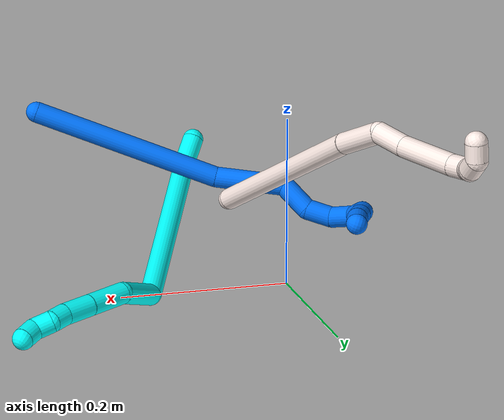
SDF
<sdf version="1.7">
 <world name="default">
  <model name="photoneo_s_sensor">
   <static>1</static>
   <pose>0 0 2 1.57079 1.57079 3.14159</pose>
   <link name="link">
    <inertial><mass>0.1</mass></inertial>
    <sensor name="sensor" type="depth">
     <update_rate>30</update_rate>
     <camera>
      <horizontal_fov>1.22</horizontal_fov>
      <image><width>1920</width><height>1200</height><format>B8G8R8</format></image>
      <clip><near>0.1</near><far>4</far></clip>
      <depth_camera><output>points</output></depth_camera>
     </camera>
     <plugin name="camera_plugin" filename="libgazebo_ros_depth_camera.so">
      <baseline>0.2</baseline>
      <alwaysOn>1</alwaysOn>
      <updateRate>0.0</updateRate>
      <cameraName>camera_ir</cameraName>
      <imageTopicName>/camera/color/image_raw</imageTopicName>
      <cameraInfoTopicName>/camera/color/camera_info</cameraInfoTopicName>
      <depthImageTopicName>/camera/depth/image_raw</depthImageTopicName>
      <depthImageCameraInfoTopicName>/camera/depth/camera_info</depthImageCameraInfoTopicName>
      <pointCloudTopicName>/camera/depth/points</pointCloudTopicName>
      <frameName>fr_optical</frameName>
      <pointCloudCutoff>0.1</pointCloudCutoff>
      <pointCloudCutoffMax>2.0</pointCloudCutoffMax>
      <distortionK1>0</distortionK1>
      <distortionK2>0</distortionK2>
      <distortionK3>0</distortionK3>
      <distortionT1>0</distortionT1>
      <distortionT2>0</distortionT2>
      <CxPrime>0</CxPrime>
      <Cx>0</Cx>
      <Cy>0</Cy>
      <focalLength>0</focalLength>
      <hackBaseline>0</hackBaseline>
     </plugin>
    </sensor>
   </link>
  </model>
  <model name="bin">
   <static>1</static>
   <link name="bottom">
    <collision name="collision-bottom">
     <pose>0 0 -0.01 0 -0 0</pose>
     <geometry><box><size>0.8 0.6 0.02</size></box></geometry>
     <surface>
      <friction><ode><mu>100</mu><mu2>100</mu2></ode></friction>
      <contact><collide_bitmask>65535</collide_bitmask></contact>
     </surface>
    </collision>
   </link>
   <link name="west_wall">
    <collision name="collision-west_wall">
     <pose>-0.41 0 0.1 0 -0 0</pose>
     <geometry><box><size>0.02 0.6 0.2</size></box></geometry>
     <surface>
      <friction><ode><mu>100</mu><mu2>100</mu2></ode></friction>
      <contact><collide_bitmask>65535</collide_bitmask></contact>
     </surface>
    </collision>
   </link>
   <link name="east_wall">
    <collision name="collision-east_wall">
     <pose>0.41 0 0.1 0 -0 0</pose>
     <geometry><box><size>0.02 0.6 0.2</size></box></geometry>
     <surface>
      <friction><ode><mu>100</mu><mu2>100</mu2></ode></friction>
      <contact><collide_bitmask>65535</collide_bitmask></contact>
     </surface>
    </collision>
   </link>
   <link name="south_wall">
    <collision name="collision-south_wall">
     <pose>0 -0.31 0.1 0 -0 0</pose>
     <geometry><box><size>0.8 0.02 0.2</size></box></geometry>
     <surface>
      <friction><ode><mu>100</mu><mu2>100</mu2></ode></friction>
      <contact><collide_bitmask>65535</collide_bitmask></contact>
     </surface>
    </collision>
   </link>
   <link name="north_wall">
    <collision name="collision-north_wall">
     <pose>0 0.31 0.1 0 -0 0</pose>
     <geometry><box><size>0.8 0.02 0.2</size></box></geometry>
     <surface>
      <friction><ode><mu>100</mu><mu2>100</mu2></ode></friction>
      <contact><collide_bitmask>65535</collide_bitmask></contact>
     </surface>
    </collision>
   </link>
  </model>
  <model name="3">
   <static>0</static>
   <link name="3">
    <collision name="collision-cylinder-e_1_1_4">
     <pose>0.0033 -0.000429 0.01838 0.023314 0.177594 0.002076</pose>
     <geometry><cylinder><radius>0.0125</radius><length>0.037357</length></cylinder></geometry>
     <surface>
      <friction><ode><mu>1.16</mu><mu2>1.16</mu2><slip1>0</slip1><slip2>0</slip2></ode></friction>
      <contact><ode><kp>1e+06</kp><kd>1</kd><max_vel>0</max_vel><min_depth>0.001</min_depth></ode></contact>
     </surface>
    </collision>
    <visual name="visual-cylinder-e_1_1_4">
     <pose>0.0033 -0.000429 0.01838 0.023314 0.177594 0.002076</pose>
     <geometry><cylinder><radius>0.0125</radius><length>0.037357</length></cylinder></geometry>
     <material><ambient>0.003922 1 0.996078 1</ambient></material>
    </visual>
    <collision name="collision-cylinder-e_2_4_5">
     <pose>0.053034 0.037215 0.143227 -0.343429 0.389668 -0.068419</pose>
     <geometry><cylinder><radius>0.0125</radius><length>0.244466</length></cylinder></geometry>
     <surface>
      <friction><ode><mu>1.16</mu><mu2>1.16</mu2><slip1>0</slip1><slip2>0</slip2></ode></friction>
      <contact><ode><kp>1e+06</kp><kd>1</kd><max_vel>0</max_vel><min_depth>0.001</min_depth></ode></contact>
     </surface>
    </collision>
    <visual name="visual-cylinder-e_2_4_5">
     <pose>0.053034 0.037215 0.143227 -0.343429 0.389668 -0.068419</pose>
     <geometry><cylinder><radius>0.0125</radius><length>0.244466</length></cylinder></geometry>
     <material><ambient>0.003922 1 0.996078 1</ambient></material>
    </visual>
    <collision name="collision-cylinder-e_3_5_6">
     <pose>0.100447 0.10574 0.267527 -1.04102 0.027748 -0.015907</pose>
     <geometry><cylinder><radius>0.0125</radius><length>0.070606</length></cylinder></geometry>
     <surface>
      <friction><ode><mu>1.16</mu><mu2>1.16</mu2><slip1>0</slip1><slip2>0</slip2></ode></friction>
      <contact><ode><kp>1e+06</kp><kd>1</kd><max_vel>0</max_vel><min_depth>0.001</min_depth></ode></contact>
     </surface>
    </collision>
    <visual name="visual-cylinder-e_3_5_6">
     <pose>0.100447 0.10574 0.267527 -1.04102 0.027748 -0.015907</pose>
     <geometry><cylinder><radius>0.0125</radius><length>0.070606</length></cylinder></geometry>
     <material><ambient>0.003922 1 0.996078 1</ambient></material>
    </visual>
    <collision name="collision-cylinder-e_4_6_7">
     <pose>0.094881 0.149749 0.304574 -0.614461 -0.271494 0.086618</pose>
     <geometry><cylinder><radius>0.0125</radius><length>0.048817</length></cylinder></geometry>
     <surface>
      <friction><ode><mu>1.16</mu><mu2>1.16</mu2><slip1>0</slip1><slip2>0</slip2></ode></friction>
      <contact><ode><kp>1e+06</kp><kd>1</kd><max_vel>0</max_vel><min_depth>0.001</min_depth></ode></contact>
     </surface>
    </collision>
    <visual name="visual-cylinder-e_4_6_7">
     <pose>0.094881 0.149749 0.304574 -0.614461 -0.271494 0.086618</pose>
     <geometry><cylinder><radius>0.0125</radius><length>0.048817</length></cylinder></geometry>
     <material><ambient>0.003922 1 0.996078 1</ambient></material>
    </visual>
    <collision name="collision-cylinder-e_5_7_8">
     <pose>0.082827 0.172712 0.337911 -0.587591 -0.313889 0.095682</pose>
     <geometry><cylinder><radius>0.0125</radius><length>0.035682</length></cylinder></geometry>
     <surface>
      <friction><ode><mu>1.16</mu><mu2>1.16</mu2><slip1>0</slip1><slip2>0</slip2></ode></friction>
      <contact><ode><kp>1e+06</kp><kd>1</kd><max_vel>0</max_vel><min_depth>0.001</min_depth></ode></contact>
     </surface>
    </collision>
    <visual name="visual-cylinder-e_5_7_8">
     <pose>0.082827 0.172712 0.337911 -0.587591 -0.313889 0.095682</pose>
     <geometry><cylinder><radius>0.0125</radius><length>0.035682</length></cylinder></geometry>
     <material><ambient>0.003922 1 0.996078 1</ambient></material>
    </visual>
    <collision name="collision-cylinder-e_6_8_9">
     <pose>0.075957 0.18764 0.360618 -0.571567 -0.132585 0.039009</pose>
     <geometry><cylinder><radius>0.0125</radius><length>0.020593</length></cylinder></geometry>
     <surface>
      <friction><ode><mu>1.16</mu><mu2>1.16</mu2><slip1>0</slip1><slip2>0</slip2></ode></friction>
      <contact><ode><kp>1e+06</kp><kd>1</kd><max_vel>0</max_vel><min_depth>0.001</min_depth></ode></contact>
     </surface>
    </collision>
    <visual name="visual-cylinder-e_6_8_9">
     <pose>0.075957 0.18764 0.360618 -0.571567 -0.132585 0.039009</pose>
     <geometry><cylinder><radius>0.0125</radius><length>0.020593</length></cylinder></geometry>
     <material><ambient>0.003922 1 0.996078 1</ambient></material>
    </visual>
    <collision name="collision-cylinder-e_7_9_10">
     <pose>0.06826 0.194653 0.377554 -0.17678 -0.641438 0.058861</pose>
     <geometry><cylinder><radius>0.0125</radius><length>0.021178</length></cylinder></geometry>
     <surface>
      <friction><ode><mu>1.16</mu><mu2>1.16</mu2><slip1>0</slip1><slip2>0</slip2></ode></friction>
      <contact><ode><kp>1e+06</kp><kd>1</kd><max_vel>0</max_vel><min_depth>0.001</min_depth></ode></contact>
     </surface>
    </collision>
    <visual name="visual-cylinder-e_7_9_10">
     <pose>0.06826 0.194653 0.377554 -0.17678 -0.641438 0.058861</pose>
     <geometry><cylinder><radius>0.0125</radius><length>0.021178</length></cylinder></geometry>
     <material><ambient>0.003922 1 0.996078 1</ambient></material>
    </visual>
    <collision name="collision-cylinder-e_8_10_2">
     <pose>0.062049 0.20115 0.395306 -0.489263 0.011709 -0.002923</pose>
     <geometry><cylinder><radius>0.0125</radius><length>0.0213</length></cylinder></geometry>
     <surface>
      <friction><ode><mu>1.16</mu><mu2>1.16</mu2><slip1>0</slip1><slip2>0</slip2></ode></friction>
      <contact><ode><kp>1e+06</kp><kd>1</kd><max_vel>0</max_vel><min_depth>0.001</min_depth></ode></contact>
     </surface>
    </collision>
    <visual name="visual-cylinder-e_8_10_2">
     <pose>0.062049 0.20115 0.395306 -0.489263 0.011709 -0.002923</pose>
     <geometry><cylinder><radius>0.0125</radius><length>0.0213</length></cylinder></geometry>
     <material><ambient>0.003922 1 0.996078 1</ambient></material>
    </visual>
    <collision name="collision-sphere-2">
     <pose>0.062173 0.206155 0.404706 0 -0 0</pose>
     <geometry><sphere><radius>0.0125</radius></sphere></geometry>
     <surface>
      <friction><ode><mu>1.16</mu><mu2>1.16</mu2><slip1>0</slip1><slip2>0</slip2></ode></friction>
      <contact><ode><kp>1e+06</kp><kd>1</kd><max_vel>0</max_vel><min_depth>0.001</min_depth></ode></contact>
     </surface>
    </collision>
    <visual name="visual-sphere-2">
     <pose>0.062173 0.206155 0.404706 0 -0 0</pose>
     <geometry><sphere><radius>0.0125</radius></sphere></geometry>
     <material><ambient>0.003922 1 0.996078 1</ambient></material>
    </visual>
    <collision name="collision-sphere-10">
     <pose>0.061924 0.196146 0.385906 0 -0 0</pose>
     <geometry><sphere><radius>0.0125</radius></sphere></geometry>
     <surface>
      <friction><ode><mu>1.16</mu><mu2>1.16</mu2><slip1>0</slip1><slip2>0</slip2></ode></friction>
      <contact><ode><kp>1e+06</kp><kd>1</kd><max_vel>0</max_vel><min_depth>0.001</min_depth></ode></contact>
     </surface>
    </collision>
    <visual name="visual-sphere-10">
     <pose>0.061924 0.196146 0.385906 0 -0 0</pose>
     <geometry><sphere><radius>0.0125</radius></sphere></geometry>
     <material><ambient>0.003922 1 0.996078 1</ambient></material>
    </visual>
    <collision name="collision-sphere-9">
     <pose>0.074596 0.193161 0.369202 0 -0 0</pose>
     <geometry><sphere><radius>0.0125</radius></sphere></geometry>
     <surface>
      <friction><ode><mu>1.16</mu><mu2>1.16</mu2><slip1>0</slip1><slip2>0</slip2></ode></friction>
      <contact><ode><kp>1e+06</kp><kd>1</kd><max_vel>0</max_vel><min_depth>0.001</min_depth></ode></contact>
     </surface>
    </collision>
    <visual name="visual-sphere-9">
     <pose>0.074596 0.193161 0.369202 0 -0 0</pose>
     <geometry><sphere><radius>0.0125</radius></sphere></geometry>
     <material><ambient>0.003922 1 0.996078 1</ambient></material>
    </visual>
    <collision name="collision-sphere-4">
     <pose>0.0066 -0.000857 0.03676 0 -0 0</pose>
     <geometry><sphere><radius>0.0125</radius></sphere></geometry>
     <surface>
      <friction><ode><mu>1.16</mu><mu2>1.16</mu2><slip1>0</slip1><slip2>0</slip2></ode></friction>
      <contact><ode><kp>1e+06</kp><kd>1</kd><max_vel>0</max_vel><min_depth>0.001</min_depth></ode></contact>
     </surface>
    </collision>
    <visual name="visual-sphere-4">
     <pose>0.0066 -0.000857 0.03676 0 -0 0</pose>
     <geometry><sphere><radius>0.0125</radius></sphere></geometry>
     <material><ambient>0.003922 1 0.996078 1</ambient></material>
    </visual>
    <collision name="collision-sphere-1">
     <geometry><sphere><radius>0.0125</radius></sphere></geometry>
     <surface>
      <friction><ode><mu>1.16</mu><mu2>1.16</mu2><slip1>0</slip1><slip2>0</slip2></ode></friction>
      <contact><ode><kp>1e+06</kp><kd>1</kd><max_vel>0</max_vel><min_depth>0.001</min_depth></ode></contact>
     </surface>
    </collision>
    <visual name="visual-sphere-1">
     <geometry><sphere><radius>0.0125</radius></sphere></geometry>
     <material><ambient>0.003922 1 0.996078 1</ambient></material>
    </visual>
    <collision name="collision-sphere-8">
     <pose>0.077318 0.182119 0.352034 0 -0 0</pose>
     <geometry><sphere><radius>0.0125</radius></sphere></geometry>
     <surface>
      <friction><ode><mu>1.16</mu><mu2>1.16</mu2><slip1>0</slip1><slip2>0</slip2></ode></friction>
      <contact><ode><kp>1e+06</kp><kd>1</kd><max_vel>0</max_vel><min_depth>0.001</min_depth></ode></contact>
     </surface>
    </collision>
    <visual name="visual-sphere-8">
     <pose>0.077318 0.182119 0.352034 0 -0 0</pose>
     <geometry><sphere><radius>0.0125</radius></sphere></geometry>
     <material><ambient>0.003922 1 0.996078 1</ambient></material>
    </visual>
    <collision name="collision-sphere-5">
     <pose>0.099468 0.075288 0.249694 0 -0 0</pose>
     <geometry><sphere><radius>0.0125</radius></sphere></geometry>
     <surface>
      <friction><ode><mu>1.16</mu><mu2>1.16</mu2><slip1>0</slip1><slip2>0</slip2></ode></friction>
      <contact><ode><kp>1e+06</kp><kd>1</kd><max_vel>0</max_vel><min_depth>0.001</min_depth></ode></contact>
     </surface>
    </collision>
    <visual name="visual-sphere-5">
     <pose>0.099468 0.075288 0.249694 0 -0 0</pose>
     <geometry><sphere><radius>0.0125</radius></sphere></geometry>
     <material><ambient>0.003922 1 0.996078 1</ambient></material>
    </visual>
    <collision name="collision-sphere-6">
     <pose>0.101427 0.136192 0.285361 0 -0 0</pose>
     <geometry><sphere><radius>0.0125</radius></sphere></geometry>
     <surface>
      <friction><ode><mu>1.16</mu><mu2>1.16</mu2><slip1>0</slip1><slip2>0</slip2></ode></friction>
      <contact><ode><kp>1e+06</kp><kd>1</kd><max_vel>0</max_vel><min_depth>0.001</min_depth></ode></contact>
     </surface>
    </collision>
    <visual name="visual-sphere-6">
     <pose>0.101427 0.136192 0.285361 0 -0 0</pose>
     <geometry><sphere><radius>0.0125</radius></sphere></geometry>
     <material><ambient>0.003922 1 0.996078 1</ambient></material>
    </visual>
    <collision name="collision-sphere-7">
     <pose>0.088335 0.163305 0.323788 0 -0 0</pose>
     <geometry><sphere><radius>0.0125</radius></sphere></geometry>
     <surface>
      <friction><ode><mu>1.16</mu><mu2>1.16</mu2><slip1>0</slip1><slip2>0</slip2></ode></friction>
      <contact><ode><kp>1e+06</kp><kd>1</kd><max_vel>0</max_vel><min_depth>0.001</min_depth></ode></contact>
     </surface>
    </collision>
    <visual name="visual-sphere-7">
     <pose>0.088335 0.163305 0.323788 0 -0 0</pose>
     <geometry><sphere><radius>0.0125</radius></sphere></geometry>
     <material><ambient>0.003922 1 0.996078 1</ambient></material>
    </visual>
    <inertial>
     <pose>0.064198 0.084584 0.210716 0 -0 0</pose>
     <mass>0.5</mass>
     <inertia>
      <ixx>0.001119</ixx>
      <ixy>0</ixy>
      <ixz>0</ixz>
      <iyy>0.001143</iyy>
      <iyz>0</iyz>
      <izz>-0.000851</izz>
     </inertia>
    </inertial>
   </link>
   <pose>0.062254 -0.19583 0.130131 2.28757 0.122854 2.34502</pose>
  </model>
  <model name="11">
   <static>0</static>
   <link name="11">
    <collision name="collision-cylinder-e_1_1_4">
     <pose>-0.012932 0.020413 0.120412 -0.167932 -0.105492 0.008887</pose>
     <geometry><cylinder><radius>0.0125</radius><length>0.245626</length></cylinder></geometry>
     <surface>
      <friction><ode><mu>1.16</mu><mu2>1.16</mu2><slip1>0</slip1><slip2>0</slip2></ode></friction>
      <contact><ode><kp>1e+06</kp><kd>1</kd><max_vel>0</max_vel><min_depth>0.001</min_depth></ode></contact>
     </surface>
    </collision>
    <visual name="visual-cylinder-e_1_1_4">
     <pose>-0.012932 0.020413 0.120412 -0.167932 -0.105492 0.008887</pose>
     <geometry><cylinder><radius>0.0125</radius><length>0.245626</length></cylinder></geometry>
     <material><ambient>1 0.933333 0.909804 1</ambient></material>
    </visual>
    <collision name="collision-cylinder-e_2_4_5">
     <pose>-0.03232 0.046922 0.268767 -0.214767 -0.222019 0.024031</pose>
     <geometry><cylinder><radius>0.0125</radius><length>0.05864</length></cylinder></geometry>
     <surface>
      <friction><ode><mu>1.16</mu><mu2>1.16</mu2><slip1>0</slip1><slip2>0</slip2></ode></friction>
      <contact><ode><kp>1e+06</kp><kd>1</kd><max_vel>0</max_vel><min_depth>0.001</min_depth></ode></contact>
     </surface>
    </collision>
    <visual name="visual-cylinder-e_2_4_5">
     <pose>-0.03232 0.046922 0.268767 -0.214767 -0.222019 0.024031</pose>
     <geometry><cylinder><radius>0.0125</radius><length>0.05864</length></cylinder></geometry>
     <material><ambient>1 0.933333 0.909804 1</ambient></material>
    </visual>
    <collision name="collision-cylinder-e_3_5_6">
     <pose>-0.047039 0.066246 0.308331 -0.850001 -0.438757 0.201141</pose>
     <geometry><cylinder><radius>0.0125</radius><length>0.038901</length></cylinder></geometry>
     <surface>
      <friction><ode><mu>1.16</mu><mu2>1.16</mu2><slip1>0</slip1><slip2>0</slip2></ode></friction>
      <contact><ode><kp>1e+06</kp><kd>1</kd><max_vel>0</max_vel><min_depth>0.001</min_depth></ode></contact>
     </surface>
    </collision>
    <visual name="visual-cylinder-e_3_5_6">
     <pose>-0.047039 0.066246 0.308331 -0.850001 -0.438757 0.201141</pose>
     <geometry><cylinder><radius>0.0125</radius><length>0.038901</length></cylinder></geometry>
     <material><ambient>1 0.933333 0.909804 1</ambient></material>
    </visual>
    <collision name="collision-cylinder-e_4_6_7">
     <pose>-0.067966 0.101821 0.346129 -0.706636 -0.352595 0.13121</pose>
     <geometry><cylinder><radius>0.0125</radius><length>0.073349</length></cylinder></geometry>
     <surface>
      <friction><ode><mu>1.16</mu><mu2>1.16</mu2><slip1>0</slip1><slip2>0</slip2></ode></friction>
      <contact><ode><kp>1e+06</kp><kd>1</kd><max_vel>0</max_vel><min_depth>0.001</min_depth></ode></contact>
     </surface>
    </collision>
    <visual name="visual-cylinder-e_4_6_7">
     <pose>-0.067966 0.101821 0.346129 -0.706636 -0.352595 0.13121</pose>
     <geometry><cylinder><radius>0.0125</radius><length>0.073349</length></cylinder></geometry>
     <material><ambient>1 0.933333 0.909804 1</ambient></material>
    </visual>
    <collision name="collision-cylinder-e_5_7_8">
     <pose>-0.084134 0.130207 0.380959 -0.609244 -0.320475 0.101544</pose>
     <geometry><cylinder><radius>0.0125</radius><length>0.022236</length></cylinder></geometry>
     <surface>
      <friction><ode><mu>1.16</mu><mu2>1.16</mu2><slip1>0</slip1><slip2>0</slip2></ode></friction>
      <contact><ode><kp>1e+06</kp><kd>1</kd><max_vel>0</max_vel><min_depth>0.001</min_depth></ode></contact>
     </surface>
    </collision>
    <visual name="visual-cylinder-e_5_7_8">
     <pose>-0.084134 0.130207 0.380959 -0.609244 -0.320475 0.101544</pose>
     <geometry><cylinder><radius>0.0125</radius><length>0.022236</length></cylinder></geometry>
     <material><ambient>1 0.933333 0.909804 1</ambient></material>
    </visual>
    <collision name="collision-cylinder-e_6_8_9">
     <pose>-0.083686 0.14128 0.39773 -0.555172 0.392059 -0.113047</pose>
     <geometry><cylinder><radius>0.0125</radius><length>0.020674</length></cylinder></geometry>
     <surface>
      <friction><ode><mu>1.16</mu><mu2>1.16</mu2><slip1>0</slip1><slip2>0</slip2></ode></friction>
      <contact><ode><kp>1e+06</kp><kd>1</kd><max_vel>0</max_vel><min_depth>0.001</min_depth></ode></contact>
     </surface>
    </collision>
    <visual name="visual-cylinder-e_6_8_9">
     <pose>-0.083686 0.14128 0.39773 -0.555172 0.392059 -0.113047</pose>
     <geometry><cylinder><radius>0.0125</radius><length>0.020674</length></cylinder></geometry>
     <material><ambient>1 0.933333 0.909804 1</ambient></material>
    </visual>
    <collision name="collision-cylinder-e_7_9_10">
     <pose>-0.078123 0.145939 0.415824 0.037608 0.160267 0.003021</pose>
     <geometry><cylinder><radius>0.0125</radius><length>0.020225</length></cylinder></geometry>
     <surface>
      <friction><ode><mu>1.16</mu><mu2>1.16</mu2><slip1>0</slip1><slip2>0</slip2></ode></friction>
      <contact><ode><kp>1e+06</kp><kd>1</kd><max_vel>0</max_vel><min_depth>0.001</min_depth></ode></contact>
     </surface>
    </collision>
    <visual name="visual-cylinder-e_7_9_10">
     <pose>-0.078123 0.145939 0.415824 0.037608 0.160267 0.003021</pose>
     <geometry><cylinder><radius>0.0125</radius><length>0.020225</length></cylinder></geometry>
     <material><ambient>1 0.933333 0.909804 1</ambient></material>
    </visual>
    <collision name="collision-cylinder-e_8_10_2">
     <pose>-0.073253 0.138538 0.4324 0.816589 0.325721 0.141929</pose>
     <geometry><cylinder><radius>0.0125</radius><length>0.020351</length></cylinder></geometry>
     <surface>
      <friction><ode><mu>1.16</mu><mu2>1.16</mu2><slip1>0</slip1><slip2>0</slip2></ode></friction>
      <contact><ode><kp>1e+06</kp><kd>1</kd><max_vel>0</max_vel><min_depth>0.001</min_depth></ode></contact>
     </surface>
    </collision>
    <visual name="visual-cylinder-e_8_10_2">
     <pose>-0.073253 0.138538 0.4324 0.816589 0.325721 0.141929</pose>
     <geometry><cylinder><radius>0.0125</radius><length>0.020351</length></cylinder></geometry>
     <material><ambient>1 0.933333 0.909804 1</ambient></material>
    </visual>
    <collision name="collision-sphere-2">
     <pose>-0.069997 0.131512 0.439001 0 -0 0</pose>
     <geometry><sphere><radius>0.0125</radius></sphere></geometry>
     <surface>
      <friction><ode><mu>1.16</mu><mu2>1.16</mu2><slip1>0</slip1><slip2>0</slip2></ode></friction>
      <contact><ode><kp>1e+06</kp><kd>1</kd><max_vel>0</max_vel><min_depth>0.001</min_depth></ode></contact>
     </surface>
    </collision>
    <visual name="visual-sphere-2">
     <pose>-0.069997 0.131512 0.439001 0 -0 0</pose>
     <geometry><sphere><radius>0.0125</radius></sphere></geometry>
     <material><ambient>1 0.933333 0.909804 1</ambient></material>
    </visual>
    <collision name="collision-sphere-10">
     <pose>-0.076509 0.145564 0.425799 0 -0 0</pose>
     <geometry><sphere><radius>0.0125</radius></sphere></geometry>
     <surface>
      <friction><ode><mu>1.16</mu><mu2>1.16</mu2><slip1>0</slip1><slip2>0</slip2></ode></friction>
      <contact><ode><kp>1e+06</kp><kd>1</kd><max_vel>0</max_vel><min_depth>0.001</min_depth></ode></contact>
     </surface>
    </collision>
    <visual name="visual-sphere-10">
     <pose>-0.076509 0.145564 0.425799 0 -0 0</pose>
     <geometry><sphere><radius>0.0125</radius></sphere></geometry>
     <material><ambient>1 0.933333 0.909804 1</ambient></material>
    </visual>
    <collision name="collision-sphere-9">
     <pose>-0.079737 0.146315 0.405848 0 -0 0</pose>
     <geometry><sphere><radius>0.0125</radius></sphere></geometry>
     <surface>
      <friction><ode><mu>1.16</mu><mu2>1.16</mu2><slip1>0</slip1><slip2>0</slip2></ode></friction>
      <contact><ode><kp>1e+06</kp><kd>1</kd><max_vel>0</max_vel><min_depth>0.001</min_depth></ode></contact>
     </surface>
    </collision>
    <visual name="visual-sphere-9">
     <pose>-0.079737 0.146315 0.405848 0 -0 0</pose>
     <geometry><sphere><radius>0.0125</radius></sphere></geometry>
     <material><ambient>1 0.933333 0.909804 1</ambient></material>
    </visual>
    <collision name="collision-sphere-4">
     <pose>-0.025863 0.040827 0.240824 0 -0 0</pose>
     <geometry><sphere><radius>0.0125</radius></sphere></geometry>
     <surface>
      <friction><ode><mu>1.16</mu><mu2>1.16</mu2><slip1>0</slip1><slip2>0</slip2></ode></friction>
      <contact><ode><kp>1e+06</kp><kd>1</kd><max_vel>0</max_vel><min_depth>0.001</min_depth></ode></contact>
     </surface>
    </collision>
    <visual name="visual-sphere-4">
     <pose>-0.025863 0.040827 0.240824 0 -0 0</pose>
     <geometry><sphere><radius>0.0125</radius></sphere></geometry>
     <material><ambient>1 0.933333 0.909804 1</ambient></material>
    </visual>
    <collision name="collision-sphere-1">
     <geometry><sphere><radius>0.0125</radius></sphere></geometry>
     <surface>
      <friction><ode><mu>1.16</mu><mu2>1.16</mu2><slip1>0</slip1><slip2>0</slip2></ode></friction>
      <contact><ode><kp>1e+06</kp><kd>1</kd><max_vel>0</max_vel><min_depth>0.001</min_depth></ode></contact>
     </surface>
    </collision>
    <visual name="visual-sphere-1">
     <geometry><sphere><radius>0.0125</radius></sphere></geometry>
     <material><ambient>1 0.933333 0.909804 1</ambient></material>
    </visual>
    <collision name="collision-sphere-8">
     <pose>-0.087636 0.136245 0.389613 0 -0 0</pose>
     <geometry><sphere><radius>0.0125</radius></sphere></geometry>
     <surface>
      <friction><ode><mu>1.16</mu><mu2>1.16</mu2><slip1>0</slip1><slip2>0</slip2></ode></friction>
      <contact><ode><kp>1e+06</kp><kd>1</kd><max_vel>0</max_vel><min_depth>0.001</min_depth></ode></contact>
     </surface>
    </collision>
    <visual name="visual-sphere-8">
     <pose>-0.087636 0.136245 0.389613 0 -0 0</pose>
     <geometry><sphere><radius>0.0125</radius></sphere></geometry>
     <material><ambient>1 0.933333 0.909804 1</ambient></material>
    </visual>
    <collision name="collision-sphere-5">
     <pose>-0.038776 0.053017 0.29671 0 -0 0</pose>
     <geometry><sphere><radius>0.0125</radius></sphere></geometry>
     <surface>
      <friction><ode><mu>1.16</mu><mu2>1.16</mu2><slip1>0</slip1><slip2>0</slip2></ode></friction>
      <contact><ode><kp>1e+06</kp><kd>1</kd><max_vel>0</max_vel><min_depth>0.001</min_depth></ode></contact>
     </surface>
    </collision>
    <visual name="visual-sphere-5">
     <pose>-0.038776 0.053017 0.29671 0 -0 0</pose>
     <geometry><sphere><radius>0.0125</radius></sphere></geometry>
     <material><ambient>1 0.933333 0.909804 1</ambient></material>
    </visual>
    <collision name="collision-sphere-6">
     <pose>-0.055302 0.079474 0.319953 0 -0 0</pose>
     <geometry><sphere><radius>0.0125</radius></sphere></geometry>
     <surface>
      <friction><ode><mu>1.16</mu><mu2>1.16</mu2><slip1>0</slip1><slip2>0</slip2></ode></friction>
      <contact><ode><kp>1e+06</kp><kd>1</kd><max_vel>0</max_vel><min_depth>0.001</min_depth></ode></contact>
     </surface>
    </collision>
    <visual name="visual-sphere-6">
     <pose>-0.055302 0.079474 0.319953 0 -0 0</pose>
     <geometry><sphere><radius>0.0125</radius></sphere></geometry>
     <material><ambient>1 0.933333 0.909804 1</ambient></material>
    </visual>
    <collision name="collision-sphere-7">
     <pose>-0.080631 0.124168 0.372306 0 -0 0</pose>
     <geometry><sphere><radius>0.0125</radius></sphere></geometry>
     <surface>
      <friction><ode><mu>1.16</mu><mu2>1.16</mu2><slip1>0</slip1><slip2>0</slip2></ode></friction>
      <contact><ode><kp>1e+06</kp><kd>1</kd><max_vel>0</max_vel><min_depth>0.001</min_depth></ode></contact>
     </surface>
    </collision>
    <visual name="visual-sphere-7">
     <pose>-0.080631 0.124168 0.372306 0 -0 0</pose>
     <geometry><sphere><radius>0.0125</radius></sphere></geometry>
     <material><ambient>1 0.933333 0.909804 1</ambient></material>
    </visual>
    <inertial>
     <pose>-0.037117 0.058796 0.233245 0 -0 0</pose>
     <mass>0.5</mass>
     <inertia>
      <ixx>0.001313</ixx>
      <ixy>0</ixy>
      <ixz>0</ixz>
      <iyy>0.001311</iyy>
      <iyz>0</iyz>
      <izz>-5.4e-05</izz>
     </inertia>
    </inertial>
   </link>
   <pose>0.048204 -0.079111 0.0851 -0.864545 -0.238381 0.11244</pose>
  </model>
  <model name="14">
   <static>0</static>
   <link name="14">
    <collision name="collision-cylinder-e_1_1_4">
     <pose>-0.000865 0.001765 -0.114817 -3.12622 -0.007531 0.911161</pose>
     <geometry><cylinder><radius>0.0125</radius><length>0.229667</length></cylinder></geometry>
     <surface>
      <friction><ode><mu>1.16</mu><mu2>1.16</mu2><slip1>0</slip1><slip2>0</slip2></ode></friction>
      <contact><ode><kp>1e+06</kp><kd>1</kd><max_vel>0</max_vel><min_depth>0.001</min_depth></ode></contact>
     </surface>
    </collision>
    <visual name="visual-cylinder-e_1_1_4">
     <pose>-0.000865 0.001765 -0.114817 -3.12622 -0.007531 0.911161</pose>
     <geometry><cylinder><radius>0.0125</radius><length>0.229667</length></cylinder></geometry>
     <material><ambient>0 0.462745 1 1</ambient></material>
    </visual>
    <collision name="collision-cylinder-e_2_4_5">
     <pose>-0.012393 -0.001181 -0.269844 3.02496 -0.257531 -2.2944</pose>
     <geometry><cylinder><radius>0.0125</radius><length>0.083733</length></cylinder></geometry>
     <surface>
      <friction><ode><mu>1.16</mu><mu2>1.16</mu2><slip1>0</slip1><slip2>0</slip2></ode></friction>
      <contact><ode><kp>1e+06</kp><kd>1</kd><max_vel>0</max_vel><min_depth>0.001</min_depth></ode></contact>
     </surface>
    </collision>
    <visual name="visual-cylinder-e_2_4_5">
     <pose>-0.012393 -0.001181 -0.269844 3.02496 -0.257531 -2.2944</pose>
     <geometry><cylinder><radius>0.0125</radius><length>0.083733</length></cylinder></geometry>
     <material><ambient>0 0.462745 1 1</ambient></material>
    </visual>
    <collision name="collision-cylinder-e_3_5_6">
     <pose>-0.02314 0.004177 -0.327289 -2.61281 -0.004216 0.015573</pose>
     <geometry><cylinder><radius>0.0125</radius><length>0.039921</length></cylinder></geometry>
     <surface>
      <friction><ode><mu>1.16</mu><mu2>1.16</mu2><slip1>0</slip1><slip2>0</slip2></ode></friction>
      <contact><ode><kp>1e+06</kp><kd>1</kd><max_vel>0</max_vel><min_depth>0.001</min_depth></ode></contact>
     </surface>
    </collision>
    <visual name="visual-cylinder-e_3_5_6">
     <pose>-0.02314 0.004177 -0.327289 -2.61281 -0.004216 0.015573</pose>
     <geometry><cylinder><radius>0.0125</radius><length>0.039921</length></cylinder></geometry>
     <material><ambient>0 0.462745 1 1</ambient></material>
    </visual>
    <collision name="collision-cylinder-e_4_6_7">
     <pose>-0.026189 0.015202 -0.360156 -3.08053 -0.187054 2.51205</pose>
     <geometry><cylinder><radius>0.0125</radius><length>0.031881</length></cylinder></geometry>
     <surface>
      <friction><ode><mu>1.16</mu><mu2>1.16</mu2><slip1>0</slip1><slip2>0</slip2></ode></friction>
      <contact><ode><kp>1e+06</kp><kd>1</kd><max_vel>0</max_vel><min_depth>0.001</min_depth></ode></contact>
     </surface>
    </collision>
    <visual name="visual-cylinder-e_4_6_7">
     <pose>-0.026189 0.015202 -0.360156 -3.08053 -0.187054 2.51205</pose>
     <geometry><cylinder><radius>0.0125</radius><length>0.031881</length></cylinder></geometry>
     <material><ambient>0 0.462745 1 1</ambient></material>
    </visual>
    <collision name="collision-cylinder-e_5_7_8">
     <pose>-0.041289 0.016292 -0.38686 -3.12951 -0.831248 3.11421</pose>
     <geometry><cylinder><radius>0.0125</radius><length>0.032855</length></cylinder></geometry>
     <surface>
      <friction><ode><mu>1.16</mu><mu2>1.16</mu2><slip1>0</slip1><slip2>0</slip2></ode></friction>
      <contact><ode><kp>1e+06</kp><kd>1</kd><max_vel>0</max_vel><min_depth>0.001</min_depth></ode></contact>
     </surface>
    </collision>
    <visual name="visual-cylinder-e_5_7_8">
     <pose>-0.041289 0.016292 -0.38686 -3.12951 -0.831248 3.11421</pose>
     <geometry><cylinder><radius>0.0125</radius><length>0.032855</length></cylinder></geometry>
     <material><ambient>0 0.462745 1 1</ambient></material>
    </visual>
    <collision name="collision-cylinder-e_6_8_9">
     <pose>-0.063919 0.017074 -0.400522 -2.89644 -1.32154 2.82725</pose>
     <geometry><cylinder><radius>0.0125</radius><length>0.021657</length></cylinder></geometry>
     <surface>
      <friction><ode><mu>1.16</mu><mu2>1.16</mu2><slip1>0</slip1><slip2>0</slip2></ode></friction>
      <contact><ode><kp>1e+06</kp><kd>1</kd><max_vel>0</max_vel><min_depth>0.001</min_depth></ode></contact>
     </surface>
    </collision>
    <visual name="visual-cylinder-e_6_8_9">
     <pose>-0.063919 0.017074 -0.400522 -2.89644 -1.32154 2.82725</pose>
     <geometry><cylinder><radius>0.0125</radius><length>0.021657</length></cylinder></geometry>
     <material><ambient>0 0.462745 1 1</ambient></material>
    </visual>
    <collision name="collision-cylinder-e_7_9_10">
     <pose>-0.082055 0.023865 -0.401118 -1.25667 -0.869069 0.650483</pose>
     <geometry><cylinder><radius>0.0125</radius><length>0.020012</length></cylinder></geometry>
     <surface>
      <friction><ode><mu>1.16</mu><mu2>1.16</mu2><slip1>0</slip1><slip2>0</slip2></ode></friction>
      <contact><ode><kp>1e+06</kp><kd>1</kd><max_vel>0</max_vel><min_depth>0.001</min_depth></ode></contact>
     </surface>
    </collision>
    <visual name="visual-cylinder-e_7_9_10">
     <pose>-0.082055 0.023865 -0.401118 -1.25667 -0.869069 0.650483</pose>
     <geometry><cylinder><radius>0.0125</radius><length>0.020012</length></cylinder></geometry>
     <material><ambient>0 0.462745 1 1</ambient></material>
    </visual>
    <collision name="collision-cylinder-e_8_10_11">
     <pose>-0.097271 0.03637 -0.396965 -1.24383 -0.845339 0.623764</pose>
     <geometry><cylinder><radius>0.0125</radius><length>0.020248</length></cylinder></geometry>
     <surface>
      <friction><ode><mu>1.16</mu><mu2>1.16</mu2><slip1>0</slip1><slip2>0</slip2></ode></friction>
      <contact><ode><kp>1e+06</kp><kd>1</kd><max_vel>0</max_vel><min_depth>0.001</min_depth></ode></contact>
     </surface>
    </collision>
    <visual name="visual-cylinder-e_8_10_11">
     <pose>-0.097271 0.03637 -0.396965 -1.24383 -0.845339 0.623764</pose>
     <geometry><cylinder><radius>0.0125</radius><length>0.020248</length></cylinder></geometry>
     <material><ambient>0 0.462745 1 1</ambient></material>
    </visual>
    <collision name="collision-cylinder-e_9_11_2">
     <pose>-0.111956 0.049771 -0.394421 -1.51592 -0.78953 0.751299</pose>
     <geometry><cylinder><radius>0.0125</radius><length>0.020026</length></cylinder></geometry>
     <surface>
      <friction><ode><mu>1.16</mu><mu2>1.16</mu2><slip1>0</slip1><slip2>0</slip2></ode></friction>
      <contact><ode><kp>1e+06</kp><kd>1</kd><max_vel>0</max_vel><min_depth>0.001</min_depth></ode></contact>
     </surface>
    </collision>
    <visual name="visual-cylinder-e_9_11_2">
     <pose>-0.111956 0.049771 -0.394421 -1.51592 -0.78953 0.751299</pose>
     <geometry><cylinder><radius>0.0125</radius><length>0.020026</length></cylinder></geometry>
     <material><ambient>0 0.462745 1 1</ambient></material>
    </visual>
    <collision name="collision-sphere-2">
     <pose>-0.119065 0.056812 -0.394034 0 -0 0</pose>
     <geometry><sphere><radius>0.0125</radius></sphere></geometry>
     <surface>
      <friction><ode><mu>1.16</mu><mu2>1.16</mu2><slip1>0</slip1><slip2>0</slip2></ode></friction>
      <contact><ode><kp>1e+06</kp><kd>1</kd><max_vel>0</max_vel><min_depth>0.001</min_depth></ode></contact>
     </surface>
    </collision>
    <visual name="visual-sphere-2">
     <pose>-0.119065 0.056812 -0.394034 0 -0 0</pose>
     <geometry><sphere><radius>0.0125</radius></sphere></geometry>
     <material><ambient>0 0.462745 1 1</ambient></material>
    </visual>
    <collision name="collision-sphere-11">
     <pose>-0.104846 0.042731 -0.394807 0 -0 0</pose>
     <geometry><sphere><radius>0.0125</radius></sphere></geometry>
     <surface>
      <friction><ode><mu>1.16</mu><mu2>1.16</mu2><slip1>0</slip1><slip2>0</slip2></ode></friction>
      <contact><ode><kp>1e+06</kp><kd>1</kd><max_vel>0</max_vel><min_depth>0.001</min_depth></ode></contact>
     </surface>
    </collision>
    <visual name="visual-sphere-11">
     <pose>-0.104846 0.042731 -0.394807 0 -0 0</pose>
     <geometry><sphere><radius>0.0125</radius></sphere></geometry>
     <material><ambient>0 0.462745 1 1</ambient></material>
    </visual>
    <collision name="collision-sphere-10">
     <pose>-0.089697 0.030008 -0.399122 0 -0 0</pose>
     <geometry><sphere><radius>0.0125</radius></sphere></geometry>
     <surface>
      <friction><ode><mu>1.16</mu><mu2>1.16</mu2><slip1>0</slip1><slip2>0</slip2></ode></friction>
      <contact><ode><kp>1e+06</kp><kd>1</kd><max_vel>0</max_vel><min_depth>0.001</min_depth></ode></contact>
     </surface>
    </collision>
    <visual name="visual-sphere-10">
     <pose>-0.089697 0.030008 -0.399122 0 -0 0</pose>
     <geometry><sphere><radius>0.0125</radius></sphere></geometry>
     <material><ambient>0 0.462745 1 1</ambient></material>
    </visual>
    <collision name="collision-sphere-9">
     <pose>-0.074413 0.017722 -0.403114 0 -0 0</pose>
     <geometry><sphere><radius>0.0125</radius></sphere></geometry>
     <surface>
      <friction><ode><mu>1.16</mu><mu2>1.16</mu2><slip1>0</slip1><slip2>0</slip2></ode></friction>
      <contact><ode><kp>1e+06</kp><kd>1</kd><max_vel>0</max_vel><min_depth>0.001</min_depth></ode></contact>
     </surface>
    </collision>
    <visual name="visual-sphere-9">
     <pose>-0.074413 0.017722 -0.403114 0 -0 0</pose>
     <geometry><sphere><radius>0.0125</radius></sphere></geometry>
     <material><ambient>0 0.462745 1 1</ambient></material>
    </visual>
    <collision name="collision-sphere-4">
     <pose>-0.00173 0.00353 -0.229633 0 -0 0</pose>
     <geometry><sphere><radius>0.0125</radius></sphere></geometry>
     <surface>
      <friction><ode><mu>1.16</mu><mu2>1.16</mu2><slip1>0</slip1><slip2>0</slip2></ode></friction>
      <contact><ode><kp>1e+06</kp><kd>1</kd><max_vel>0</max_vel><min_depth>0.001</min_depth></ode></contact>
     </surface>
    </collision>
    <visual name="visual-sphere-4">
     <pose>-0.00173 0.00353 -0.229633 0 -0 0</pose>
     <geometry><sphere><radius>0.0125</radius></sphere></geometry>
     <material><ambient>0 0.462745 1 1</ambient></material>
    </visual>
    <collision name="collision-sphere-1">
     <geometry><sphere><radius>0.0125</radius></sphere></geometry>
     <surface>
      <friction><ode><mu>1.16</mu><mu2>1.16</mu2><slip1>0</slip1><slip2>0</slip2></ode></friction>
      <contact><ode><kp>1e+06</kp><kd>1</kd><max_vel>0</max_vel><min_depth>0.001</min_depth></ode></contact>
     </surface>
    </collision>
    <visual name="visual-sphere-1">
     <geometry><sphere><radius>0.0125</radius></sphere></geometry>
     <material><ambient>0 0.462745 1 1</ambient></material>
    </visual>
    <collision name="collision-sphere-8">
     <pose>-0.053425 0.016426 -0.397931 0 -0 0</pose>
     <geometry><sphere><radius>0.0125</radius></sphere></geometry>
     <surface>
      <friction><ode><mu>1.16</mu><mu2>1.16</mu2><slip1>0</slip1><slip2>0</slip2></ode></friction>
      <contact><ode><kp>1e+06</kp><kd>1</kd><max_vel>0</max_vel><min_depth>0.001</min_depth></ode></contact>
     </surface>
    </collision>
    <visual name="visual-sphere-8">
     <pose>-0.053425 0.016426 -0.397931 0 -0 0</pose>
     <geometry><sphere><radius>0.0125</radius></sphere></geometry>
     <material><ambient>0 0.462745 1 1</ambient></material>
    </visual>
    <collision name="collision-sphere-5">
     <pose>-0.023056 -0.005893 -0.310055 0 -0 0</pose>
     <geometry><sphere><radius>0.0125</radius></sphere></geometry>
     <surface>
      <friction><ode><mu>1.16</mu><mu2>1.16</mu2><slip1>0</slip1><slip2>0</slip2></ode></friction>
      <contact><ode><kp>1e+06</kp><kd>1</kd><max_vel>0</max_vel><min_depth>0.001</min_depth></ode></contact>
     </surface>
    </collision>
    <visual name="visual-sphere-5">
     <pose>-0.023056 -0.005893 -0.310055 0 -0 0</pose>
     <geometry><sphere><radius>0.0125</radius></sphere></geometry>
     <material><ambient>0 0.462745 1 1</ambient></material>
    </visual>
    <collision name="collision-sphere-6">
     <pose>-0.023224 0.014246 -0.344523 0 -0 0</pose>
     <geometry><sphere><radius>0.0125</radius></sphere></geometry>
     <surface>
      <friction><ode><mu>1.16</mu><mu2>1.16</mu2><slip1>0</slip1><slip2>0</slip2></ode></friction>
      <contact><ode><kp>1e+06</kp><kd>1</kd><max_vel>0</max_vel><min_depth>0.001</min_depth></ode></contact>
     </surface>
    </collision>
    <visual name="visual-sphere-6">
     <pose>-0.023224 0.014246 -0.344523 0 -0 0</pose>
     <geometry><sphere><radius>0.0125</radius></sphere></geometry>
     <material><ambient>0 0.462745 1 1</ambient></material>
    </visual>
    <collision name="collision-sphere-7">
     <pose>-0.029153 0.016158 -0.37579 0 -0 0</pose>
     <geometry><sphere><radius>0.0125</radius></sphere></geometry>
     <surface>
      <friction><ode><mu>1.16</mu><mu2>1.16</mu2><slip1>0</slip1><slip2>0</slip2></ode></friction>
      <contact><ode><kp>1e+06</kp><kd>1</kd><max_vel>0</max_vel><min_depth>0.001</min_depth></ode></contact>
     </surface>
    </collision>
    <visual name="visual-sphere-7">
     <pose>-0.029153 0.016158 -0.37579 0 -0 0</pose>
     <geometry><sphere><radius>0.0125</radius></sphere></geometry>
     <material><ambient>0 0.462745 1 1</ambient></material>
    </visual>
    <inertial>
     <pose>-0.023179 0.008147 -0.237721 0 -0 0</pose>
     <mass>0.5</mass>
     <inertia>
      <ixx>0.001356</ixx>
      <ixy>0</ixy>
      <ixz>0</ixz>
      <iyy>0.000193</iyy>
      <iyz>0</iyz>
      <izz>-1.7e-05</izz>
     </inertia>
    </inertial>
   </link>
   <pose>0.258455 -0.188091 0.180006 -1.12521 0.663786 -1.56856</pose>
  </model>
 </world>
</sdf>
